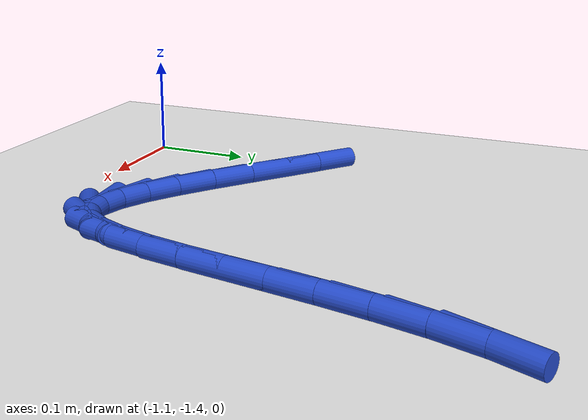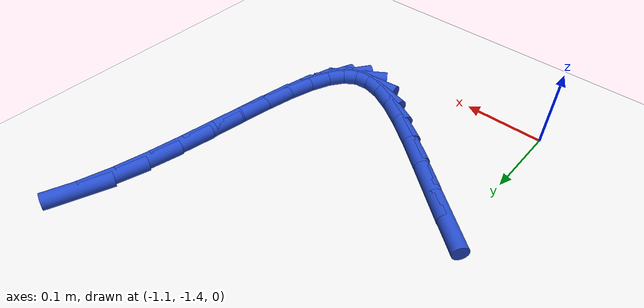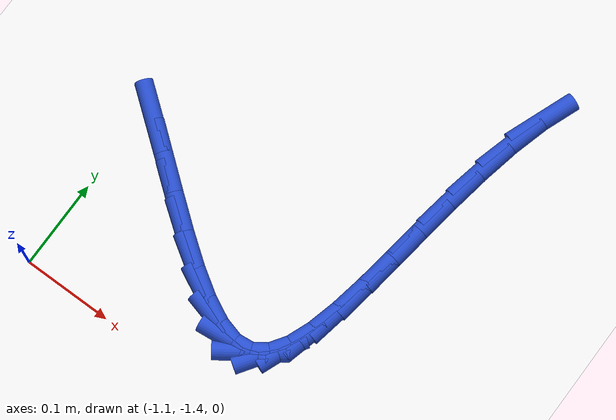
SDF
<sdf version="1.6">
 <world name="default">
  <model name="ground_plane">
   <static>1</static>
   <link name="link">
    <collision name="collision">
     <geometry><plane><normal>0 0 1</normal><size>100 100</size></plane></geometry>
     <surface><friction><ode><mu>100</mu><mu2>50</mu2></ode></friction></surface>
    </collision>
    <visual name="visual">
     <cast_shadows>0</cast_shadows>
     <geometry><plane><normal>0 0 1</normal><size>100 100</size></plane></geometry>
     <material>
      <script><uri>file://media/materials/scripts/gazebo.material</uri><name>Gazebo/WhiteGlow</name></script>
     </material>
    </visual>
   </link>
  </model>
  <model name="line">
   <link name="link_182">
    <pose>-1.0881166682509404 -1.2029374011284684 0.01 0 1.57 -0.6618745023198213</pose>
    <collision name="collision">
     <geometry><cylinder><radius>0.01</radius><length>0.08</length></cylinder></geometry>
    </collision>
    <visual name="visual">
     <material>
      <script><name>Gazebo/Blue</name><uri>file://media/materials/scripts/gazebo.material</uri></script>
     </material>
     <geometry><cylinder><radius>0.01</radius><length>0.08</length></cylinder></geometry>
    </visual>
   </link>
   <link name="link_183">
    <pose>-1.0534941267220734 -1.2299122691807356 0.01 0 1.57 -0.6719331823670522</pose>
    <collision name="collision">
     <geometry><cylinder><radius>0.01</radius><length>0.08</length></cylinder></geometry>
    </collision>
    <visual name="visual">
     <material>
      <script><name>Gazebo/Blue</name><uri>file://media/materials/scripts/gazebo.material</uri></script>
     </material>
     <geometry><cylinder><radius>0.01</radius><length>0.08</length></cylinder></geometry>
    </visual>
   </link>
   <link name="link_184">
    <pose>-1.0197616629661705 -1.256743259139385 0.01 0 1.57 -0.6637001528377054</pose>
    <collision name="collision">
     <geometry><cylinder><radius>0.01</radius><length>0.08</length></cylinder></geometry>
    </collision>
    <visual name="visual">
     <material>
      <script><name>Gazebo/Blue</name><uri>file://media/materials/scripts/gazebo.material</uri></script>
     </material>
     <geometry><cylinder><radius>0.01</radius><length>0.08</length></cylinder></geometry>
    </visual>
   </link>
   <link name="link_185">
    <pose>-0.9873424685795262 -1.2820967197321984 0.01 0 1.57 -0.6336301201883603</pose>
    <collision name="collision">
     <geometry><cylinder><radius>0.01</radius><length>0.08</length></cylinder></geometry>
    </collision>
    <visual name="visual">
     <material>
      <script><name>Gazebo/Blue</name><uri>file://media/materials/scripts/gazebo.material</uri></script>
     </material>
     <geometry><cylinder><radius>0.01</radius><length>0.08</length></cylinder></geometry>
    </visual>
   </link>
   <link name="link_186">
    <pose>-0.9566597351584382 -1.304638999686954 0.01 0 1.57 -0.5728537552519715</pose>
    <collision name="collision">
     <geometry><cylinder><radius>0.01</radius><length>0.08</length></cylinder></geometry>
    </collision>
    <visual name="visual">
     <material>
      <script><name>Gazebo/Blue</name><uri>file://media/materials/scripts/gazebo.material</uri></script>
     </material>
     <geometry><cylinder><radius>0.01</radius><length>0.08</length></cylinder></geometry>
    </visual>
   </link>
   <link name="link_187">
    <pose>-0.9281366542992006 -1.3230364477314331 0.01 0 1.57 -0.4620687852507656</pose>
    <collision name="collision">
     <geometry><cylinder><radius>0.01</radius><length>0.08</length></cylinder></geometry>
    </collision>
    <visual name="visual">
     <material>
      <script><name>Gazebo/Blue</name><uri>file://media/materials/scripts/gazebo.material</uri></script>
     </material>
     <geometry><cylinder><radius>0.01</radius><length>0.08</length></cylinder></geometry>
    </visual>
   </link>
   <link name="link_188">
    <pose>-0.9021964175981089 -1.3359554125934154 0.01 0 1.57 -0.2602377528666622</pose>
    <collision name="collision">
     <geometry><cylinder><radius>0.01</radius><length>0.08</length></cylinder></geometry>
    </collision>
    <visual name="visual">
     <material>
      <script><name>Gazebo/Blue</name><uri>file://media/materials/scripts/gazebo.material</uri></script>
     </material>
     <geometry><cylinder><radius>0.01</radius><length>0.08</length></cylinder></geometry>
    </visual>
   </link>
   <link name="link_189">
    <pose>-0.8792622166514585 -1.3420622430006817 0.01 0 1.57 0.1041285319524853</pose>
    <collision name="collision">
     <geometry><cylinder><radius>0.01</radius><length>0.08</length></cylinder></geometry>
    </collision>
    <visual name="visual">
     <material>
      <script><name>Gazebo/Blue</name><uri>file://media/materials/scripts/gazebo.material</uri></script>
     </material>
     <geometry><cylinder><radius>0.01</radius><length>0.08</length></cylinder></geometry>
    </visual>
   </link>
   <link name="link_190">
    <pose>-0.8597570246095677 -1.3400238232977026 0.01 0 1.57 0.6037398512843736</pose>
    <collision name="collision">
     <geometry><cylinder><radius>0.01</radius><length>0.08</length></cylinder></geometry>
    </collision>
    <visual name="visual">
     <material>
      <script><name>Gazebo/Blue</name><uri>file://media/materials/scripts/gazebo.material</uri></script>
     </material>
     <geometry><cylinder><radius>0.01</radius><length>0.08</length></cylinder></geometry>
    </visual>
   </link>
   <link name="link_191">
    <pose>-0.8438740936831222 -1.3290703000642772 0.01 0 1.57 0.980590127247628</pose>
    <collision name="collision">
     <geometry><cylinder><radius>0.01</radius><length>0.08</length></cylinder></geometry>
    </collision>
    <visual name="visual">
     <material>
      <script><name>Gazebo/Blue</name><uri>file://media/materials/scripts/gazebo.material</uri></script>
     </material>
     <geometry><cylinder><radius>0.01</radius><length>0.08</length></cylinder></geometry>
    </visual>
   </link>
   <link name="link_192">
    <pose>-0.8311416258360498 -1.3100624839772301 0.01 0 1.57 1.1966182268559615</pose>
    <collision name="collision">
     <geometry><cylinder><radius>0.01</radius><length>0.08</length></cylinder></geometry>
    </collision>
    <visual name="visual">
     <material>
      <script><name>Gazebo/Blue</name><uri>file://media/materials/scripts/gazebo.material</uri></script>
     </material>
     <geometry><cylinder><radius>0.01</radius><length>0.08</length></cylinder></geometry>
    </visual>
   </link>
   <link name="link_193">
    <pose>-0.8209681682699929 -1.2841545721542627 0.01 0 1.57 1.3171412756593452</pose>
    <collision name="collision">
     <geometry><cylinder><radius>0.01</radius><length>0.08</length></cylinder></geometry>
    </collision>
    <visual name="visual">
     <material>
      <script><name>Gazebo/Blue</name><uri>file://media/materials/scripts/gazebo.material</uri></script>
     </material>
     <geometry><cylinder><radius>0.01</radius><length>0.08</length></cylinder></geometry>
    </visual>
   </link>
   <link name="link_194">
    <pose>-0.812762268186593 -1.2525007617130737 0.01 0 1.57 1.3845486855923188</pose>
    <collision name="collision">
     <geometry><cylinder><radius>0.01</radius><length>0.08</length></cylinder></geometry>
    </collision>
    <visual name="visual">
     <material>
      <script><name>Gazebo/Blue</name><uri>file://media/materials/scripts/gazebo.material</uri></script>
     </material>
     <geometry><cylinder><radius>0.01</radius><length>0.08</length></cylinder></geometry>
    </visual>
   </link>
   <link name="link_195">
    <pose>-0.8059324727874926 -1.2162552497713628 0.01 0 1.57 1.4196227776131163</pose>
    <collision name="collision">
     <geometry><cylinder><radius>0.01</radius><length>0.08</length></cylinder></geometry>
    </collision>
    <visual name="visual">
     <material>
      <script><name>Gazebo/Blue</name><uri>file://media/materials/scripts/gazebo.material</uri></script>
     </material>
     <geometry><cylinder><radius>0.01</radius><length>0.08</length></cylinder></geometry>
    </visual>
   </link>
   <link name="link_196">
    <pose>-0.7998873292743334 -1.17657223344683 0.01 0 1.57 1.4322459164482129</pose>
    <collision name="collision">
     <geometry><cylinder><radius>0.01</radius><length>0.08</length></cylinder></geometry>
    </collision>
    <visual name="visual">
     <material>
      <script><name>Gazebo/Blue</name><uri>file://media/materials/scripts/gazebo.material</uri></script>
     </material>
     <geometry><cylinder><radius>0.01</radius><length>0.08</length></cylinder></geometry>
    </visual>
   </link>
   <link name="link_197">
    <pose>-0.7940353848487571 -1.1346059098571748 0.01 0 1.57 1.4267689916420063</pose>
    <collision name="collision">
     <geometry><cylinder><radius>0.01</radius><length>0.08</length></cylinder></geometry>
    </collision>
    <visual name="visual">
     <material>
      <script><name>Gazebo/Blue</name><uri>file://media/materials/scripts/gazebo.material</uri></script>
     </material>
     <geometry><cylinder><radius>0.01</radius><length>0.08</length></cylinder></geometry>
    </visual>
   </link>
   <link name="link_198">
    <pose>-0.7877851867124062 -1.0915104761200964 0.01 0 1.57 1.404258361905422</pose>
    <collision name="collision">
     <geometry><cylinder><radius>0.01</radius><length>0.08</length></cylinder></geometry>
    </collision>
    <visual name="visual">
     <material>
      <script><name>Gazebo/Blue</name><uri>file://media/materials/scripts/gazebo.material</uri></script>
     </material>
     <geometry><cylinder><radius>0.01</radius><length>0.08</length></cylinder></geometry>
    </visual>
   </link>
   <link name="link_199">
    <pose>-0.7805452820669221 -1.0484401293532948 0.01 0 1.57 1.3632568330760884</pose>
    <collision name="collision">
     <geometry><cylinder><radius>0.01</radius><length>0.08</length></cylinder></geometry>
    </collision>
    <visual name="visual">
     <material>
      <script><name>Gazebo/Blue</name><uri>file://media/materials/scripts/gazebo.material</uri></script>
     </material>
     <geometry><cylinder><radius>0.01</radius><length>0.08</length></cylinder></geometry>
    </visual>
   </link>
   <link name="link_200">
    <pose>-0.7717242181139468 -1.0065490666744683 0.01 0 1.57 1.2997213655417172</pose>
    <collision name="collision">
     <geometry><cylinder><radius>0.01</radius><length>0.08</length></cylinder></geometry>
    </collision>
    <visual name="visual">
     <material>
      <script><name>Gazebo/Blue</name><uri>file://media/materials/scripts/gazebo.material</uri></script>
     </material>
     <geometry><cylinder><radius>0.01</radius><length>0.08</length></cylinder></geometry>
    </visual>
   </link>
   <link name="link_201">
    <pose>-0.7607305420551227 -0.9669914852013191 0.01 0 1.57 1.2064100817198276</pose>
    <collision name="collision">
     <geometry><cylinder><radius>0.01</radius><length>0.08</length></cylinder></geometry>
    </collision>
    <visual name="visual">
     <material>
      <script><name>Gazebo/Blue</name><uri>file://media/materials/scripts/gazebo.material</uri></script>
     </material>
     <geometry><cylinder><radius>0.01</radius><length>0.08</length></cylinder></geometry>
    </visual>
   </link>
  </model>
 </world>
</sdf>
